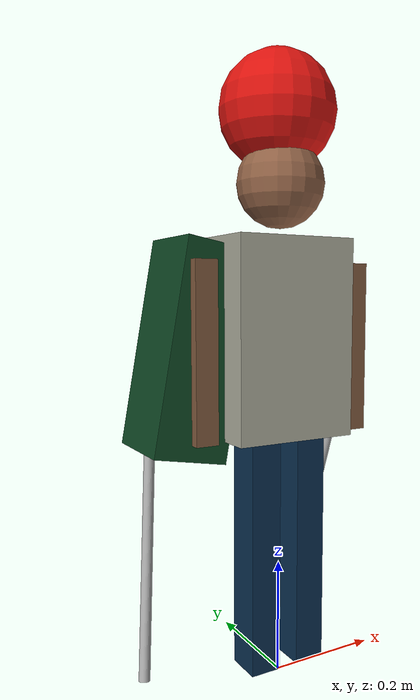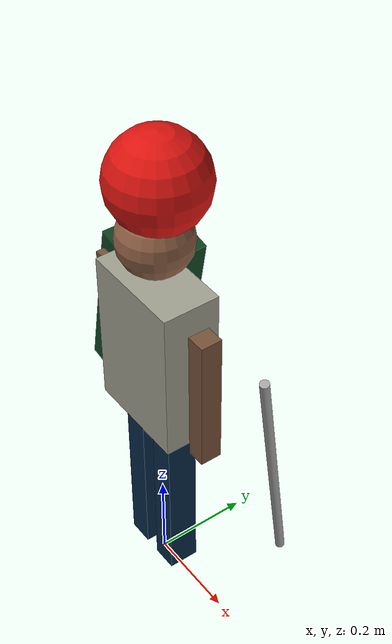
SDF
<?xml version="1.0"?>
<sdf version="1.10">
  <model name="hiking_hiker">
    <static>false</static>
    <allow_auto_disable>false</allow_auto_disable>
    <link name="body">
      <gravity>false</gravity>
      <self_collide>false</self_collide>
      <inertial>
        <pose>0 0 0.95 0 0 0</pose>
        <mass>8.0</mass>
        <inertia>
          <ixx>1.0</ixx>
          <ixy>0</ixy>
          <ixz>0</ixz>
          <iyy>1.0</iyy>
          <iyz>0</iyz>
          <izz>0.45</izz>
        </inertia>
      </inertial>
      <visual name="leg_left">
        <pose>0.045 0 0.23 0 0 0</pose>
        <geometry>
          <box>
            <size>0.055 0.065 0.42</size>
          </box>
        </geometry>
        <material>
          <ambient>0.02 0.07 0.12 1</ambient>
          <diffuse>0.03 0.16 0.28 1</diffuse>
        </material>
      </visual>
      <visual name="leg_right">
        <pose>-0.045 0 0.23 0 0 0</pose>
        <geometry>
          <box>
            <size>0.055 0.065 0.42</size>
          </box>
        </geometry>
        <material>
          <ambient>0.02 0.07 0.12 1</ambient>
          <diffuse>0.03 0.16 0.28 1</diffuse>
        </material>
      </visual>
      <visual name="torso">
        <pose>0 0 0.60 0 0 0</pose>
        <geometry>
          <box>
            <size>0.22 0.12 0.34</size>
          </box>
        </geometry>
        <material>
          <ambient>0.42 0.42 0.38 1</ambient>
          <diffuse>0.62 0.62 0.56 1</diffuse>
        </material>
      </visual>
      <visual name="arm_left">
        <pose>0.15 0 0.58 0 0 0</pose>
        <geometry>
          <box>
            <size>0.04 0.045 0.30</size>
          </box>
        </geometry>
        <material>
          <ambient>0.24 0.17 0.12 1</ambient>
          <diffuse>0.46 0.32 0.22 1</diffuse>
        </material>
      </visual>
      <visual name="arm_right">
        <pose>-0.15 0 0.58 0 0 0</pose>
        <geometry>
          <box>
            <size>0.04 0.045 0.30</size>
          </box>
        </geometry>
        <material>
          <ambient>0.24 0.17 0.12 1</ambient>
          <diffuse>0.46 0.32 0.22 1</diffuse>
        </material>
      </visual>
      <visual name="head">
        <pose>0 0 0.86 0 0 0</pose>
        <geometry>
          <sphere>
            <radius>0.075</radius>
          </sphere>
        </geometry>
        <material>
          <ambient>0.32 0.21 0.15 1</ambient>
          <diffuse>0.56 0.38 0.27 1</diffuse>
        </material>
      </visual>
      <visual name="backpack">
        <pose>-0.14 0.07 0.58 0 0.18 0</pose>
        <geometry>
          <box>
            <size>0.13 0.15 0.36</size>
          </box>
        </geometry>
        <material>
          <ambient>0.03 0.10 0.06 1</ambient>
          <diffuse>0.05 0.26 0.13 1</diffuse>
        </material>
      </visual>
      <visual name="helmet">
        <pose>0 0.01 0.98 0 0 0</pose>
        <geometry>
          <sphere>
            <radius>0.10</radius>
          </sphere>
        </geometry>
        <material>
          <ambient>0.56 0.04 0.03 1</ambient>
          <diffuse>0.86 0.08 0.06 1</diffuse>
        </material>
      </visual>
      <visual name="pole_left">
        <pose>0.19 0.14 0.32 0.20 0.12 0</pose>
        <geometry>
          <cylinder>
            <radius>0.010</radius>
            <length>0.65</length>
          </cylinder>
        </geometry>
        <material>
          <ambient>0.42 0.42 0.42 1</ambient>
          <diffuse>0.64 0.64 0.64 1</diffuse>
        </material>
      </visual>
      <visual name="pole_right">
        <pose>-0.19 0.14 0.32 -0.20 0.12 0</pose>
        <geometry>
          <cylinder>
            <radius>0.010</radius>
            <length>0.65</length>
          </cylinder>
        </geometry>
        <material>
          <ambient>0.42 0.42 0.42 1</ambient>
          <diffuse>0.64 0.64 0.64 1</diffuse>
        </material>
      </visual>
    </link>
  </model>
</sdf>
